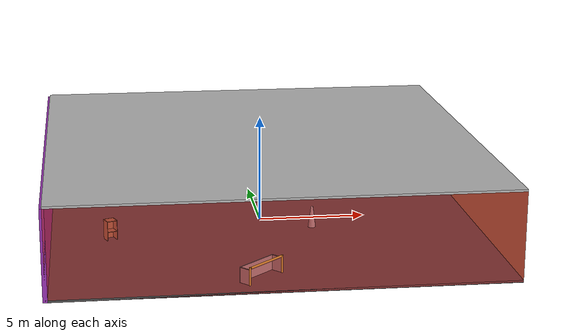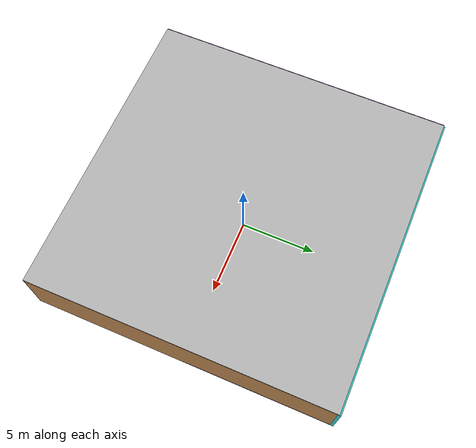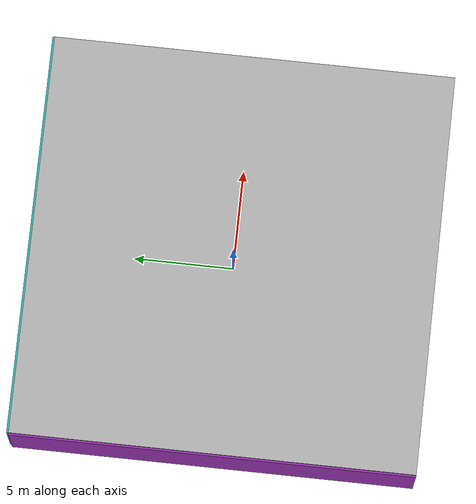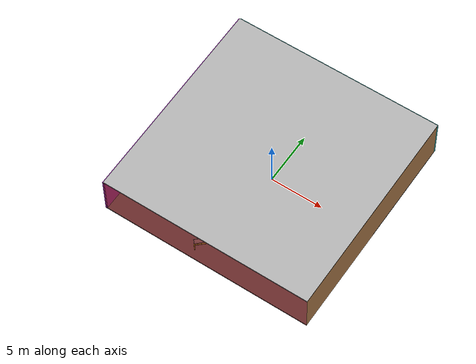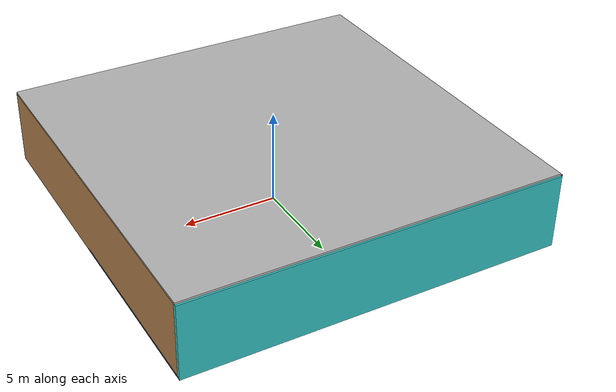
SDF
<sdf version="1.4">
 <world name="default">
  <physics type="ode">
   <max_step_size>0.001</max_step_size>
   <real_time_factor>1</real_time_factor>
   <real_time_update_rate>1000</real_time_update_rate>
   <gravity>0 0 -9.8</gravity>
  </physics>
  <scene><ambient>0.4 0.4 0.4 1</ambient><background>0.7 0.7 0.7 1</background><shadows>1</shadows></scene>
  <model name="Surrounding">
   <static>1</static>
   <link name="Ceiling">
    <collision name="Ceiling_Collision"><geometry><box><size>20 20 0.1</size></box></geometry></collision>
    <visual name="Ceiling_Visual">
     <geometry><box><size>20 20 0.1</size></box></geometry>
     <material>
      <script><uri>file://media/materials/scripts/gazebo.material</uri><name>Gazebo/LightOff</name></script>
     </material>
    </visual>
    <pose>0 0 4.05 0 0 0</pose>
   </link>
   <link name="Wall_South">
    <collision name="Wall_South_Collision">
     <geometry><box><size>20 0 4</size></box></geometry>
     <pose>0 0 2 0 -0 0</pose>
    </collision>
    <visual name="Wall_South_Visual">
     <pose>0 0 2 0 -0 0</pose>
     <geometry><box><size>20 0 4</size></box></geometry>
     <material>
      <script><uri>file://media/materials/scripts/gazebo.material</uri><name>Gazebo/RedTransparent</name></script>
     </material>
    </visual>
    <velocity_decay><linear>0</linear><angular>0</angular></velocity_decay>
    <pose>0 -10 0 0 -0 0</pose>
   </link>
   <link name="Wall_East">
    <collision name="Wall_21_Collision">
     <geometry><box><size>20 0 4</size></box></geometry>
     <pose>0 0 2 0 -0 0</pose>
    </collision>
    <visual name="Wall_21_Visual">
     <pose>0 0 2 0 -0 0</pose>
     <geometry><box><size>20 0 4</size></box></geometry>
     <material>
      <script><uri>file://media/materials/scripts/gazebo.material</uri><name>Gazebo/WoodPallet</name></script>
     </material>
    </visual>
    <velocity_decay><linear>0</linear><angular>0</angular></velocity_decay>
    <pose>10 0 0 0 -0 1.5708</pose>
   </link>
   <link name="Wall_North">
    <collision name="Wall_22_Collision">
     <geometry><box><size>20 0.2 4</size></box></geometry>
     <pose>0 0 2 0 -0 0</pose>
    </collision>
    <visual name="Wall_22_Visual">
     <pose>0 0 2 0 -0 0</pose>
     <geometry><box><size>20 0.2 4</size></box></geometry>
     <material>
      <script><uri>file://media/materials/scripts/gazebo.material</uri><name>Gazebo/Turquoise</name></script>
     </material>
    </visual>
    <velocity_decay><linear>0</linear><angular>0</angular></velocity_decay>
    <pose>0 10 0 0 -0 0</pose>
   </link>
   <link name="Wall_West">
    <collision name="Wall_23_Collision">
     <geometry><box><size>20 0.2 4</size></box></geometry>
     <pose>0 0 2 0 -0 0</pose>
    </collision>
    <visual name="Wall_23_Visual">
     <pose>0 0 2 0 -0 0</pose>
     <geometry><box><size>20 0.2 4</size></box></geometry>
     <material>
      <script><uri>file://media/materials/scripts/gazebo.material</uri><name>Gazebo/PurpleGlow</name></script>
     </material>
    </visual>
    <velocity_decay><linear>0</linear><angular>0</angular></velocity_decay>
    <pose>-10 0 0 0 0 -1.5708</pose>
   </link>
   <link name="Ground_link">
    <collision name="collision">
     <pose>0 0 .05 0 -0 0</pose>
     <geometry><box><size>20 20 0.1</size></box></geometry>
    </collision>
    <visual name="visual">
     <pose>0 0 .05 0 -0 0</pose>
     <geometry><box><size>20 20 0.1</size></box></geometry>
     <material>
      <script><uri>file://media/materials/scripts/gazebo.material</uri><name>Gazebo/Road</name></script>
     </material>
    </visual>
   </link>
   <static>1</static>
  </model>
  <spherical_coordinates>
   <surface_model>EARTH_WGS84</surface_model>
   <latitude_deg>0</latitude_deg>
   <longitude_deg>0</longitude_deg>
   <elevation>0</elevation>
   <heading_deg>0</heading_deg>
  </spherical_coordinates>
  <light name="lightball_0" type="diffuse">
   <diffuse>0.8 0.8 0.8 1</diffuse>
   <specular>0.2 0.2 0.2 1</specular>
   <attenuation>
    <range>100</range>
    <constant>0.7</constant>
    <linear>0.01</linear>
    <quadratic>0.001</quadratic>
   </attenuation>
   <direction>-0.5 0.1 -0.9</direction>
   <pose>3.54479349522 -0.915337554129 2.00837190155 0 0 0</pose>
  </light>
  <light name="lightball_1" type="diffuse">
   <diffuse>0.8 0.8 0.8 1</diffuse>
   <specular>0.2 0.2 0.2 1</specular>
   <attenuation>
    <range>100</range>
    <constant>0.7</constant>
    <linear>0.01</linear>
    <quadratic>0.001</quadratic>
   </attenuation>
   <direction>-0.5 0.1 -0.9</direction>
   <pose>9.87193428125 9.78858000423 2.23431907153 0 0 0</pose>
  </light>
  <light name="lightball_2" type="diffuse">
   <diffuse>0.8 0.8 0.8 1</diffuse>
   <specular>0.2 0.2 0.2 1</specular>
   <attenuation>
    <range>100</range>
    <constant>0.7</constant>
    <linear>0.01</linear>
    <quadratic>0.001</quadratic>
   </attenuation>
   <direction>-0.5 0.1 -0.9</direction>
   <pose>-5.85157352351 6.03545971509 2.92640839792 0 0 0</pose>
  </light>
  <light name="lightball_3" type="diffuse">
   <diffuse>0.8 0.8 0.8 1</diffuse>
   <specular>0.2 0.2 0.2 1</specular>
   <attenuation>
    <range>100</range>
    <constant>0.7</constant>
    <linear>0.01</linear>
    <quadratic>0.001</quadratic>
   </attenuation>
   <direction>-0.5 0.1 -0.9</direction>
   <pose>2.08612004879 1.21115479738 1.3147155705 0 0 0</pose>
  </light>
  <light name="lightball_4" type="diffuse">
   <diffuse>0.8 0.8 0.8 1</diffuse>
   <specular>0.2 0.2 0.2 1</specular>
   <attenuation>
    <range>100</range>
    <constant>0.7</constant>
    <linear>0.01</linear>
    <quadratic>0.001</quadratic>
   </attenuation>
   <direction>-0.5 0.1 -0.9</direction>
   <pose>-1.43022880702 -2.9410108803 0.702607877119 0 0 0</pose>
  </light>
  <light name="lightball_5" type="diffuse">
   <diffuse>0.8 0.8 0.8 1</diffuse>
   <specular>0.2 0.2 0.2 1</specular>
   <attenuation>
    <range>100</range>
    <constant>0.7</constant>
    <linear>0.01</linear>
    <quadratic>0.001</quadratic>
   </attenuation>
   <direction>-0.5 0.1 -0.9</direction>
   <pose>4.7944426217 -8.64143182794 1.77412440469 0 0 0</pose>
  </light>
  <light name="lightball_6" type="diffuse">
   <diffuse>0.8 0.8 0.8 1</diffuse>
   <specular>0.2 0.2 0.2 1</specular>
   <attenuation>
    <range>100</range>
    <constant>0.7</constant>
    <linear>0.01</linear>
    <quadratic>0.001</quadratic>
   </attenuation>
   <direction>-0.5 0.1 -0.9</direction>
   <pose>-9.77922026087 8.56239241595 3.74825178355 0 0 0</pose>
  </light>
  <light name="lightball_7" type="diffuse">
   <diffuse>0.8 0.8 0.8 1</diffuse>
   <specular>0.2 0.2 0.2 1</specular>
   <attenuation>
    <range>100</range>
    <constant>0.7</constant>
    <linear>0.01</linear>
    <quadratic>0.001</quadratic>
   </attenuation>
   <direction>-0.5 0.1 -0.9</direction>
   <pose>5.19713700442 -2.59698135103 3.20619146394 0 0 0</pose>
  </light>
  <include><uri>model://cabinet</uri><pose>-7.17772951717 -2.45039722471 0 0 0 1.9498794766</pose></include>
  <include>
   <uri>model://robocup_3Dsim_goal</uri>
   <pose>-0.763540481626 -8.53641019543 0 0 0 2.31599918492</pose>
  </include>
  <include>
   <uri>model://construction_cone</uri>
   <pose>2.24328527451 -1.75549176422 0 0 0 2.43494335972</pose>
  </include>
 </world>
</sdf>

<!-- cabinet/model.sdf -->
<sdf version="1.5">
  <model name="cabinet">
    <static>true</static>
    <link name="cabinet_bottom_plate">
      <inertial>
        <pose>0 0 -1 0 0 0</pose>
        <inertia>
          <ixx>2.050000</ixx>
          <ixy>0</ixy>
          <ixz>0</ixz>
          <iyy>2.050000</iyy>
          <iyz>0</iyz>
          <izz>2.050000</izz>
        </inertia>
        <mass>25.000000</mass>
      </inertial>
      <collision name="cabinet_bottom_plate_geom">
        <pose>0 0 0.010000 0 0 0</pose>
        <geometry>
          <box>
            <size>0.450000 0.450000 0.020000</size>
          </box>
        </geometry>
      </collision>
      <visual name="cabinet_bottom_plate_geom_visual">
        <pose>0 0 0.010000 0 0 0</pose>
        <geometry>
          <box>
            <size>0.450000 0.450000 0.020000</size>
          </box>
        </geometry>
        <material>
          <script>
            <uri>model://media/materials/scripts/gazebo.material</uri>
            <name>Gazebo/Wood</name>
          </script>
        </material>
      </visual>
      <collision name="cabinet_bottom_plate_geom_cabinet_back_plate">
        <pose>0.235000 0 0.510000 0 0 0</pose>
        <geometry>
          <box>
            <size>0.020000 0.450000 1.020000</size>
          </box>
        </geometry>
      </collision>
      <visual name="cabinet_bottom_plate_geom_cabinet_back_plate_visual">
        <pose>0.235000 0 0.510000 0 0 0</pose>
        <geometry>
          <box>
            <size>0.020000 0.450000 1.020000</size>
          </box>
        </geometry>
        <material>
          <script>
            <uri>model://media/materials/scripts/gazebo.material</uri>
            <name>Gazebo/Wood</name>
          </script>
        </material>
      </visual>
      <collision name="cabinet_bottom_plate_geom_cabinet_left_plate">
        <pose>0 0.235000 0.510000 0 0 0</pose>
        <geometry>
          <box>
            <size>0.450000 0.020000 1.020000</size>
          </box>
        </geometry>
      </collision>
      <visual name="cabinet_bottom_plate_geom_cabinet_left_plate_visual">
        <pose>0 0.235000 0.510000 0 0 0</pose>
        <geometry>
          <box>
            <size>0.450000 0.020000 1.020000</size>
          </box>
        </geometry>
        <material>
          <script>
            <uri>model://media/materials/scripts/gazebo.material</uri>
            <name>Gazebo/Wood</name>
          </script>
        </material>
      </visual>
      <collision name="cabinet_bottom_plate_geom_cabinet_middle_plate">
        <pose>0 0 0.510000 0 0 0</pose>
        <geometry>
          <box>
            <size>0.450000 0.450000 0.020000</size>
          </box>
        </geometry>
      </collision>
      <visual name="cabinet_bottom_plate_geom_cabinet_middle_plate_visual">
        <pose>0 0 0.510000 0 0 0</pose>
        <geometry>
          <box>
            <size>0.450000 0.450000 0.020000</size>
          </box>
        </geometry>
        <material>
          <script>
            <uri>model://media/materials/scripts/gazebo.material</uri>
            <name>Gazebo/Wood</name>
          </script>
        </material>
      </visual>
      <collision name="cabinet_bottom_plate_geom_cabinet_right_plate">
        <pose>0 -0.235000 0.510000 0 0 0</pose>
        <geometry>
          <box>
            <size>0.450000 0.020000 1.020000</size>
          </box>
        </geometry>
      </collision>
      <visual name="cabinet_bottom_plate_geom_cabinet_right_plate_visual">
        <pose>0 -0.235000 0.510000 0 0 0</pose>
        <geometry>
          <box>
            <size>0.450000 0.020000 1.020000</size>
          </box>
        </geometry>
        <material>
          <script>
            <uri>model://media/materials/scripts/gazebo.material</uri>
            <name>Gazebo/Wood</name>
          </script>
        </material>
      </visual>
      <collision name="cabinet_bottom_plate_geom_cabinet_top_plate">
        <pose>0 0 1.010000 0 0 0</pose>
        <geometry>
          <box>
            <size>0.450000 0.450000 0.020000</size>
          </box>
        </geometry>
      </collision>
      <visual name="cabinet_bottom_plate_geom_cabinet_top_plate_visual">
        <pose>0 0 1.010000 0 0 0</pose>
        <geometry>
          <box>
            <size>0.450000 0.450000 0.020000</size>
          </box>
        </geometry>
        <material>
          <script>
            <uri>model://media/materials/scripts/gazebo.material</uri>
            <name>Gazebo/Wood</name>
          </script>
        </material>
      </visual>
    </link>
  </model>
</sdf>

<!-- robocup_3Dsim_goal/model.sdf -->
<sdf version="1.5">
  <model name="robocup_3d_goal">
    <static>true</static>
    <link name="left_post">
      <pose>0 1.05 0.45 0 0 0</pose>
      <collision name="collision">
        <geometry>
          <cylinder>
            <radius>0.05</radius>
            <length>0.9</length>
          </cylinder>
        </geometry>
      </collision>
      <visual name="visual">
        <geometry>
          <cylinder>
            <radius>0.05</radius>
            <length>0.9</length>
          </cylinder>
        </geometry>
        <material>
          <script>
            <uri>file://media/materials/scripts/gazebo.material</uri>
            <name>Gazebo/ZincYellow</name>
          </script>
        </material>
      </visual>
    </link>
    <link name="left_support_horiz_lower">
      <pose>0.30 1.05 0.01 0 0 0</pose>
      <collision name="collision">
        <geometry>
          <box>
            <size>0.50 0.02 0.02</size>
          </box>
        </geometry>
      </collision>
      <visual name="visual">
        <geometry>
          <box>
            <size>0.50 0.02 0.02</size>
          </box>
        </geometry>
        <material>
          <script>
            <uri>file://media/materials/scripts/gazebo.material</uri>
            <name>Gazebo/White</name>
          </script>
        </material>
      </visual>
    </link>
    <link name="left_support_horiz_upper">
      <pose>0.30 1.05 0.79 0 0 0</pose>
      <collision name="collision">
        <geometry>
          <box>
            <size>0.50 0.02 0.02</size>
          </box>
        </geometry>
      </collision>
      <visual name="visual">
        <geometry>
          <box>
            <size>0.50 0.02 0.02</size>
          </box>
        </geometry>
        <material>
          <script>
            <uri>file://media/materials/scripts/gazebo.material</uri>
            <name>Gazebo/White</name>
          </script>
        </material>
      </visual>
    </link>
    <link name="left_support_vertical">
      <pose>0.56 1.05 0.4 0 1.5708 0</pose>
      <collision name="collision">
        <geometry>
          <box>
            <size>0.80 0.02 0.02</size>
          </box>
        </geometry>
      </collision>
      <visual name="visual">
        <geometry>
          <box>
            <size>0.80 0.02 0.02</size>
          </box>
        </geometry>
        <material>
          <script>
            <uri>file://media/materials/scripts/gazebo.material</uri>
            <name>Gazebo/White</name>
          </script>
        </material>
      </visual>
    </link>
    <link name="right_support_horiz_lower">
      <pose>0.30 -1.05 0.01 0 0 0</pose>
      <collision name="collision">
        <geometry>
          <box>
            <size>0.50 0.02 0.02</size>
          </box>
        </geometry>
      </collision>
      <visual name="visual">
        <geometry>
          <box>
            <size>0.50 0.02 0.02</size>
          </box>
        </geometry>
        <material>
          <script>
            <uri>file://media/materials/scripts/gazebo.material</uri>
            <name>Gazebo/White</name>
          </script>
        </material>
      </visual>
    </link>
    <link name="right_support_horiz_upper">
      <pose>0.30 -1.05 0.79 0 0 0</pose>
      <collision name="collision">
        <geometry>
          <box>
            <size>0.50 0.02 0.02</size>
          </box>
        </geometry>
      </collision>
      <visual name="visual">
        <geometry>
          <box>
            <size>0.50 0.02 0.02</size>
          </box>
        </geometry>
        <material>
          <script>
            <uri>file://media/materials/scripts/gazebo.material</uri>
            <name>Gazebo/White</name>
          </script>
        </material>
      </visual>
    </link>
    <link name="right_support_vertical">
      <pose>0.56 -1.05 0.4 0 1.5708 0</pose>
      <collision name="collision">
        <geometry>
          <box>
            <size>0.80 0.02 0.02</size>
          </box>
        </geometry>
      </collision>
      <visual name="visual">
        <geometry>
          <box>
            <size>0.80 0.02 0.02</size>
          </box>
        </geometry>
        <material>
          <script>
            <uri>file://media/materials/scripts/gazebo.material</uri>
            <name>Gazebo/White</name>
          </script>
        </material>
      </visual>
    </link>
    <link name="center_support_horiz_lower">
      <pose>0.56 0 0.01 0 1.5708 0</pose>
      <collision name="collision">
        <geometry>
          <box>
            <size>0.02 2.08 0.02</size>
          </box>
        </geometry>
      </collision>
      <visual name="visual">
        <geometry>
          <box>
            <size>0.02 2.08 0.02</size>
          </box>
        </geometry>
        <material>
          <script>
            <uri>file://media/materials/scripts/gazebo.material</uri>
            <name>Gazebo/White</name>
          </script>
        </material>
      </visual>
    </link>
    <link name="center_support_horiz_upper">
      <pose>0.56 0 0.79 0 1.5708 0</pose>
      <collision name="collision">
        <geometry>
          <box>
            <size>0.02 2.08 0.02</size>
          </box>
        </geometry>
      </collision>
      <visual name="visual">
        <geometry>
          <box>
            <size>0.02 2.08 0.02</size>
          </box>
        </geometry>
        <material>
          <script>
            <uri>file://media/materials/scripts/gazebo.material</uri>
            <name>Gazebo/White</name>
          </script>
        </material>
      </visual>
    </link>
    <link name="right_post">
      <pose>0 -1.05 0.45 0 0 0</pose>
      <collision name="collision">
        <geometry>
          <cylinder>
            <radius>0.05</radius>
            <length>0.9</length>
          </cylinder>
        </geometry>
      </collision>
      <visual name="visual">
        <geometry>
          <cylinder>
            <radius>0.05</radius>
            <length>0.9</length>
          </cylinder>
        </geometry>
        <material>
          <script>
            <uri>file://media/materials/scripts/gazebo.material</uri>
            <name>Gazebo/ZincYellow</name>
          </script>
        </material>
      </visual>
    </link>
    <link name="crossbar">
      <pose>0 0 0.85 1.57 1.57 0</pose>
      <collision name="collision">
        <geometry>
          <cylinder>
            <radius>0.05</radius>
            <length>2.0</length>
          </cylinder>
        </geometry>
      </collision>
      <visual name="visual">
        <geometry>
          <cylinder>
            <radius>0.05</radius>
            <length>2.0</length>
          </cylinder>
        </geometry>
        <material>
          <script>
            <uri>file://media/materials/scripts/gazebo.material</uri>
            <name>Gazebo/ZincYellow</name>
          </script>
        </material>
      </visual>
    </link>
    <link name="center_net">
      <pose>0.56 0 0.40 0 0 0</pose>
      <collision name="collision">
        <geometry>
          <box>
            <size>0.01 2.1 0.80</size>
          </box>
        </geometry>
      </collision>
      <visual name="visual">
        <geometry>
          <box>
            <size>0.01 2.1 0.80</size>
          </box>
        </geometry>
        <material>
          <script>
            <uri>model://../model_source/models/robocup09_spl_field/materials/scripts/</uri>
            <uri>model://../model_source/models/robocup09_spl_field/materials/textures/</uri>
            <name>RoboCup/Net</name>
          </script>
        </material>
      </visual>
    </link>
    <link name="left_net">
      <pose>0.30 1.05 0.40 0 0 0</pose>
      <collision name="collision">
        <geometry>
          <box>
            <size>0.50 0.01 0.76</size>
          </box>
        </geometry>
      </collision>
      <visual name="visual">
        <geometry>
          <box>
            <size>0.50 0.01 0.76</size>
          </box>
        </geometry>
        <material>
          <script>
            <uri>model://../model_source/models/robocup09_spl_field/materials/scripts/</uri>
            <uri>model://../model_source/models/robocup09_spl_field/materials/textures/</uri>
            <name>RoboCup/Net</name>
          </script>
        </material>
      </visual>
    </link>
    <link name="right_net">
      <pose>0.30 -1.05 0.40 0 0 0</pose>
      <collision name="collision">
        <geometry>
          <box>
            <size>0.50 0.01 0.76</size>
          </box>
        </geometry>
      </collision>
      <visual name="visual">
        <geometry>
          <box>
            <size>0.50 0.01 0.76</size>
          </box>
        </geometry>
        <material>
          <script>
            <uri>model://../model_source/models/robocup09_spl_field/materials/scripts/</uri>
            <uri>model://../model_source/models/robocup09_spl_field/materials/textures/</uri>
            <name>RoboCup/Net</name>
          </script>
        </material>
      </visual>
    </link>
  </model>
</sdf>

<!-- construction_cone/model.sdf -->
<sdf version="1.5">
  <model name="Construction Cone">
    <link name="link">
      <collision name="collision">
        <geometry>
          <mesh>
            <scale>10 10 10</scale>
            <uri>file://isr-testbed/construction_cone/meshes/construction_cone.dae</uri>
          </mesh>
        </geometry>
      </collision>
      <visual name="visual">
        <geometry>
          <mesh>
            <scale>10 10 10</scale>
            <uri>file://isr-testbed/construction_cone/meshes/construction_cone.dae</uri>
          </mesh>
        </geometry>
      </visual>
    </link>
  </model>
</sdf>
